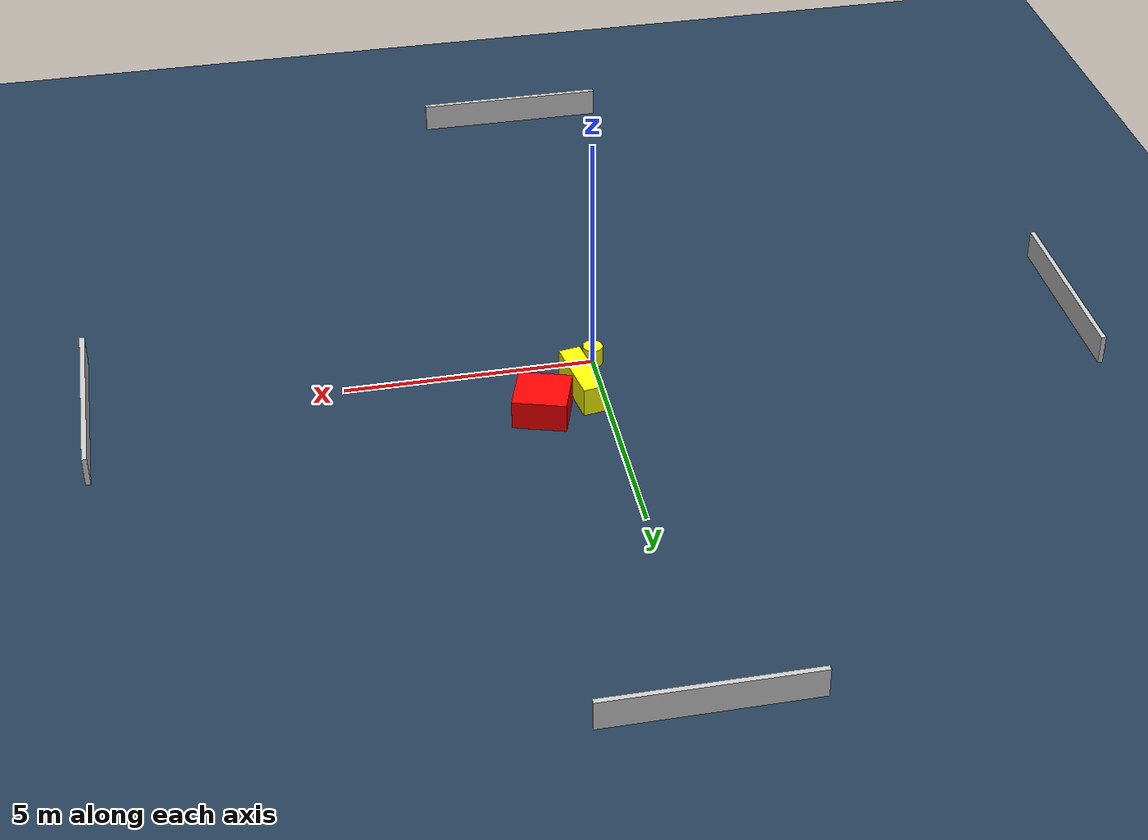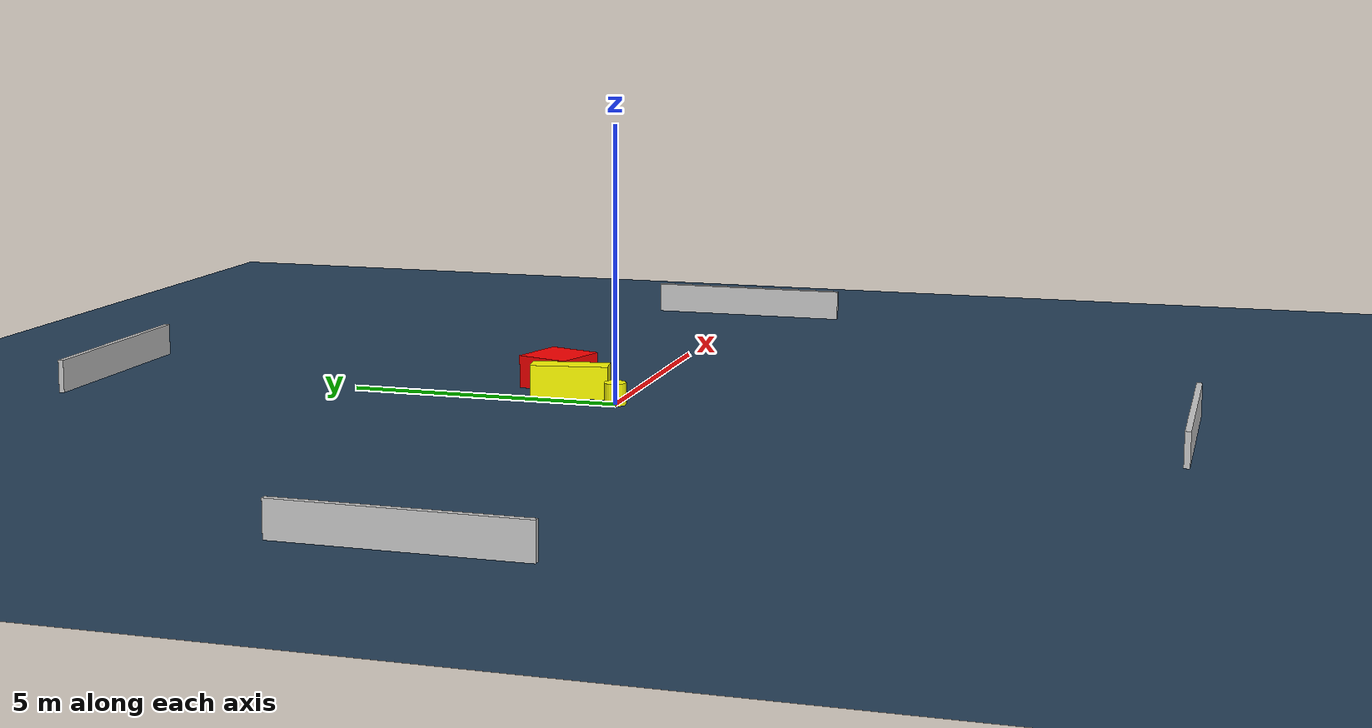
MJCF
<?xml version="1.0" ?>
<mujoco model="generated_environment">
  <option timestep="0.01" integrator="RK4" cone="elliptic"/>
  <default>
    <geom density="1"/>
  </default>
  <asset>
    <texture builtin="gradient" height="3072" name="skybox" rgb1="0.3 0.5 0.7" rgb2="0 0 0" type="skybox" width="512"/>
    <texture builtin="checker" height="300" name="groundplane" rgb1="0.2 0.3 0.4" rgb2="0.1 0.2 0.3" type="2d" width="300"/>
    <material name="groundplane" reflectance="0.2" texrepeat="5 5" texture="groundplane"/>
  </asset>
  <worldbody>
    <light dir="0 0 -1" directional="true" pos="0 0 1.5"/>
    <geom condim="3" friction="0.5 0.005 0.001" material="groundplane" name="floor" pos="0 0 0" size="0 0 0.05" type="plane"/>
    <body name="walls">
      <geom name="wall_1" condim="4" pos="-10.0 0.0 0.3" rgba="0.800000011920929 0.800000011920929 0.800000011920929 1.0" size="0.05 2.0 0.3" type="box"/>
      <geom name="wall_2" condim="4" pos="10.0 0.0 0.3" rgba="0.800000011920929 0.800000011920929 0.800000011920929 1.0" size="0.05 2.0 0.3" type="box"/>
      <geom name="wall_3" condim="4" pos="0.0 -10.0 0.3" rgba="0.800000011920929 0.800000011920929 0.800000011920929 1.0" size="2.0 0.05 0.3" type="box"/>
      <geom name="wall_4" condim="4" pos="0.0 10.0 0.3" rgba="0.800000011920929 0.800000011920929 0.800000011920929 1.0" size="2.0 0.05 0.3" type="box"/>
    </body>
    <body name="robot">
      <joint name="joint_x" type="slide" pos="0 0 0" axis="1 0 0"/>
      <joint name="joint_y" type="slide" pos="0 0 0" axis="0 1 0"/>
      <geom name="robot" type="cylinder" pos="0.0 0.0 0.2" size="0.2 0.2 0.0" mass="5.0" friction="1.0 0.005 0.0001" condim="4" rgba="1.0 1.0 0.0 1.0"/>
    </body>
    <body name="obstacle_1_movable">
      <geom name="obstacle_1_movable" condim="4" pos="0.4144899422859045 0.9796798893856834 0.3" euler="0 0 9.576244742866557" friction="0.0 0.005 0.001" rgba="1.0 1.0 0.0 1.0" size="0.2223877086924206 0.7075439312589686 0.3" type="box" mass="0.1"/>
      <joint type="free"/>
    </body>
    <body name="obstacle_2_static">
      <geom name="obstacle_2_static" condim="4" pos="1.2921197759102572 1.4932303092538823 0.3" euler="0 0 342.35747676697883" friction="0.0 0.005 0.001" rgba="1.0 0.0 0.0 1.0" size="0.5335766269996647 0.5098333330130544 0.3" type="box"/>
    </body>
  </worldbody>
  <actuator>
    <motor name="actuator_x" joint="joint_x" gear="1" ctrlrange="-1 1"/>
    <motor name="actuator_y" joint="joint_y" gear="1" ctrlrange="-1 1"/>
  </actuator>
</mujoco>
